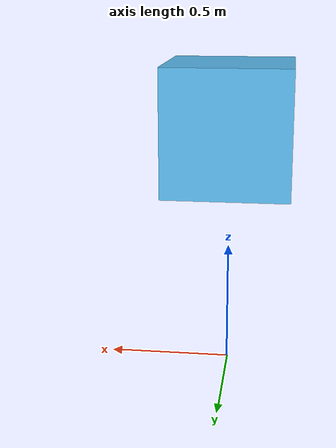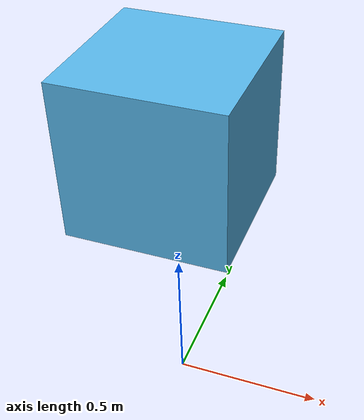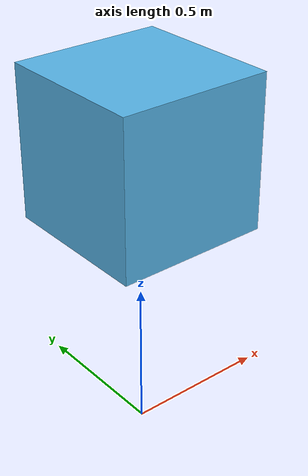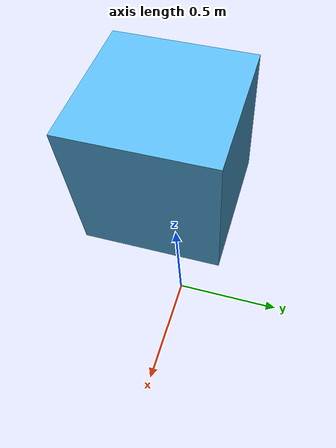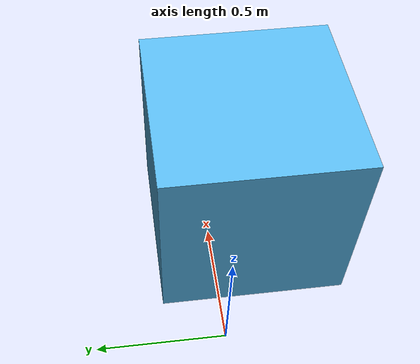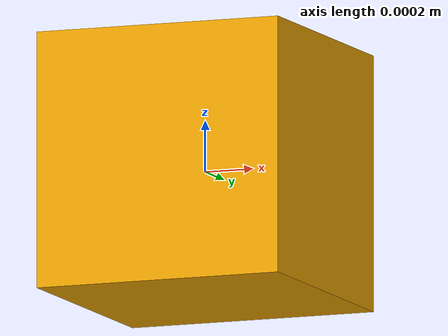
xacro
<?xml version="1.0"?>
<!-- Revolute-Revolute Manipulator -->
<robot name="mybot" xmlns:xacro="http://www.ros.org/wiki/xacro">

  <link name="base_footprint">
    <visual>
      <origin xyz="0 0 0" rpy="0 0 0" />
      <geometry>
        <box size="0.001 0.001 0.001" />
      </geometry>
    </visual>
  </link>

  <joint name="base_footprint_joint" type="fixed">
    <origin xyz="0 0 1" rpy="0 0 0" />
    <parent link="base_footprint" />
    <child link="base_link" />
  </joint>

  <link name="base_link">
    <visual>
      <geometry>
        <box size="0.5 0.5 0.5"/>
      </geometry>
    </visual>
    <collision>
      <origin xyz=" 0 0 0" rpy="0 0 0" />
      <geometry>
        <box size="0.5 0.5 0.5"/>>
      </geometry>
    </collision>
  </link>

</robot>
